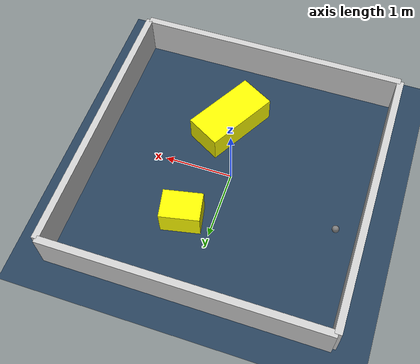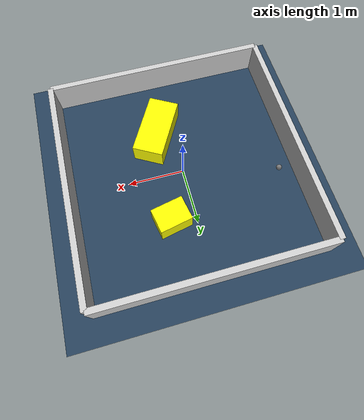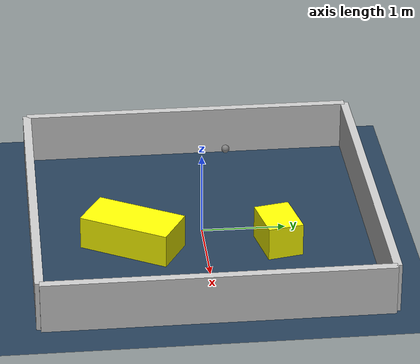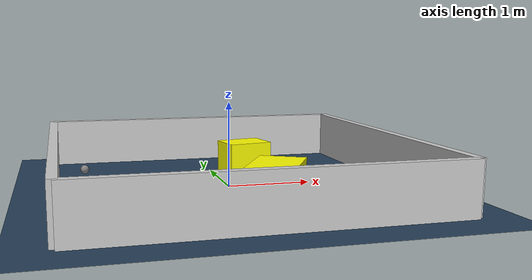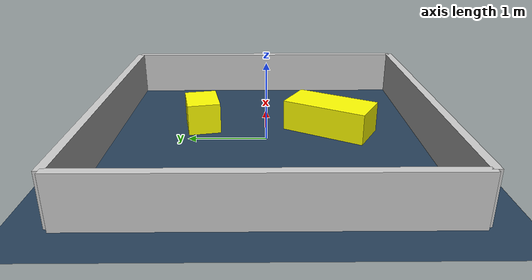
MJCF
<?xml version="1.0" ?>
<mujoco model="generated_environment">
  <option timestep="0.01" integrator="RK4" cone="elliptic"/>
  <default>
    <geom density="1"/>
  </default>
  <asset>
    <texture builtin="gradient" height="3072" rgb1="0.3 0.5 0.7" rgb2="0 0 0" type="skybox" width="512"/>
    <texture builtin="checker" height="300" mark="edge" markrgb="0.8 0.8 0.8" name="groundplane" rgb1="0.2 0.3 0.4" rgb2="0.1 0.2 0.3" type="2d" width="300"/>
    <material name="groundplane" reflectance="0.2" texrepeat="5 5" texture="groundplane" texuniform="true"/>
    <material name="robot" rgba="0.0 1.0 0.0 1"/>
  </asset>
  <worldbody>
    <light dir="0 0 -1" directional="true" pos="0 0 1.5"/>
    <geom condim="4" friction="1.0 0.005 0.001" material="groundplane" name="floor" size="0 0 0.05" type="plane"/>
    <body name="walls">
      <geom name="wall_1" condim="4" pos="-2.0 0.0 0.3" rgba="0.800000011920929 0.800000011920929 0.800000011920929 1.0" size="0.05 2.0 0.3" type="box"/>
      <geom name="wall_2" condim="4" pos="2.0 0.0 0.3" rgba="0.800000011920929 0.800000011920929 0.800000011920929 1.0" size="0.05 2.0 0.3" type="box"/>
      <geom name="wall_3" condim="4" pos="0.0 -2.0 0.3" rgba="0.800000011920929 0.800000011920929 0.800000011920929 1.0" size="2.0 0.05 0.3" type="box"/>
      <geom name="wall_4" condim="4" pos="0.0 2.0 0.3" rgba="0.800000011920929 0.800000011920929 0.800000011920929 1.0" size="2.0 0.05 0.3" type="box"/>
    </body>
    <body name="robot">
      <joint name="joint_x" type="slide" pos="0 0 0" axis="1 0 0"/>
      <joint name="joint_y" type="slide" pos="0 0 0" axis="0 1 0"/>
      <geom name="robot" type="sphere" pos="-1.650218470135969 0.45778629706730145 0.2" size="0.05" mass="5." friction="1.0 0.005 0.0001" condim="4"/>
      <site name="sensor_ball"/>
    </body>
    <body name="obstacle_1_movable">
      <geom name="obstacle_1_movable" condim="4" pos="0.4291109310007848 0.8611358132330857 0.2" euler="0 0 281.3030974477928" friction="1.0 0.005 0.001" rgba="1 1 0 1" size="0.21129830534566998 0.28335738541157796 0.2" type="box" mass="0.1"/>
      <joint type="free"/>
    </body>
    <body name="obstacle_2_movable">
      <geom name="obstacle_2_movable" condim="4" pos="0.2828819329091954 -0.8461821140283278 0.2" euler="0 0 150.561056716828" friction="1.0 0.005 0.001" rgba="1 1 0 1" size="0.27189224452949645 0.5535510849713672 0.2" type="box" mass="0.1"/>
      <joint type="free"/>
    </body>
  </worldbody>
  <actuator>
    <motor name="actuator_x" joint="joint_x" gear="1" ctrlrange="-1 1"/>
    <motor name="actuator_y" joint="joint_y" gear="1" ctrlrange="-1 1"/>
  </actuator>
</mujoco>
